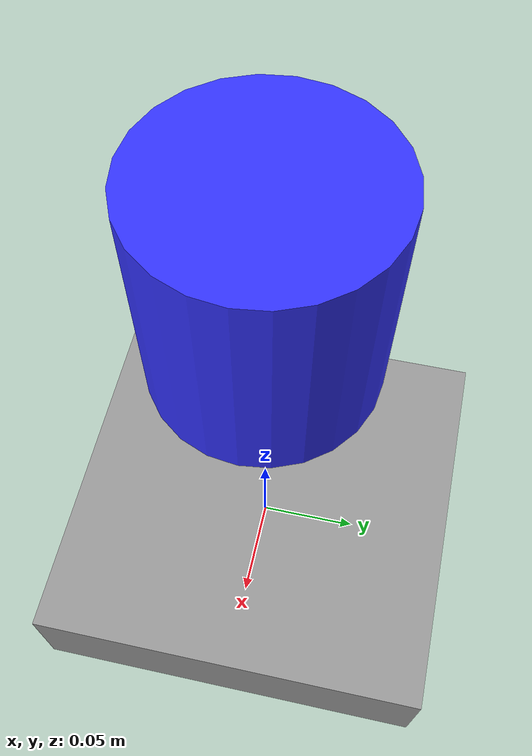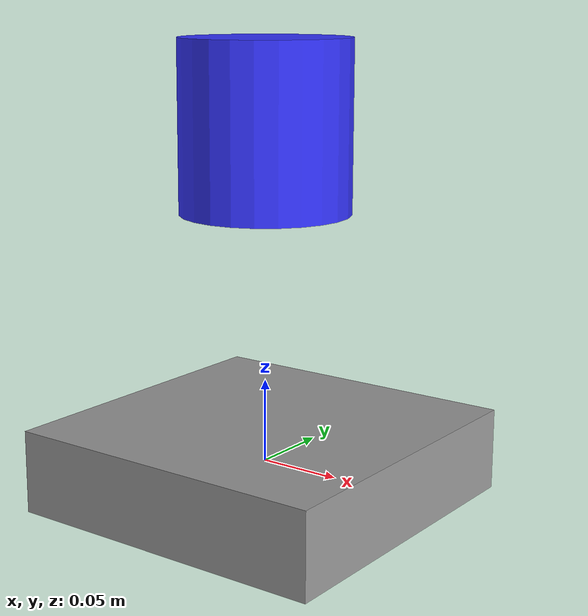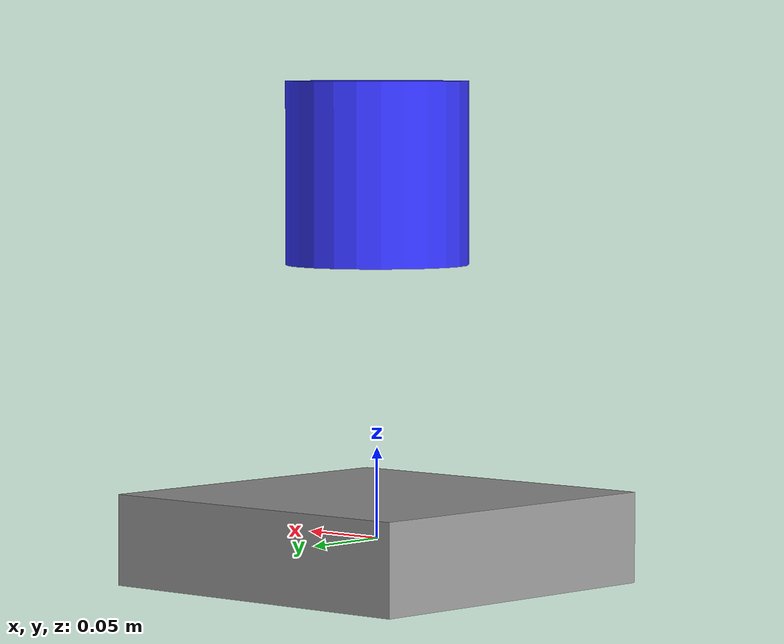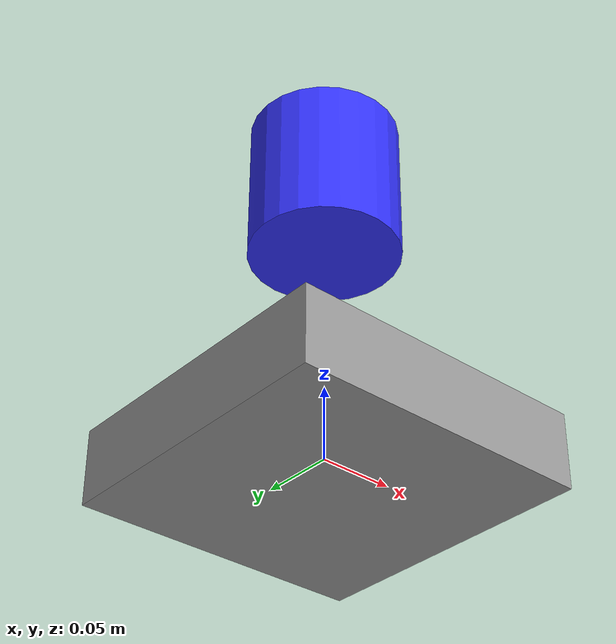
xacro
<?xml version="1.0"?>
<robot name="laser_robot" xmlns:xacro="http://ros.org/wiki/xacro">

  <link name="base_link">
    <visual>
      <geometry>
        <box size="0.2 0.2 0.05"/>
      </geometry>
      <material name="gray">
        <color rgba="0.6 0.6 0.6 1.0"/>
      </material>
    </visual>
  </link>

  <link name="laser_link">
    <visual>
      <geometry>
        <cylinder radius="0.05" length="0.1"/>
      </geometry>
      <material name="blue">
        <color rgba="0.2 0.2 1.0 1.0"/>
      </material>
    </visual>
  </link>

  <joint name="base_to_laser" type="fixed">
    <parent link="base_link"/>
    <child link="laser_link"/>
    <origin xyz="0 0 0.2" rpy="0 0 0"/>
  </joint>

</robot>
